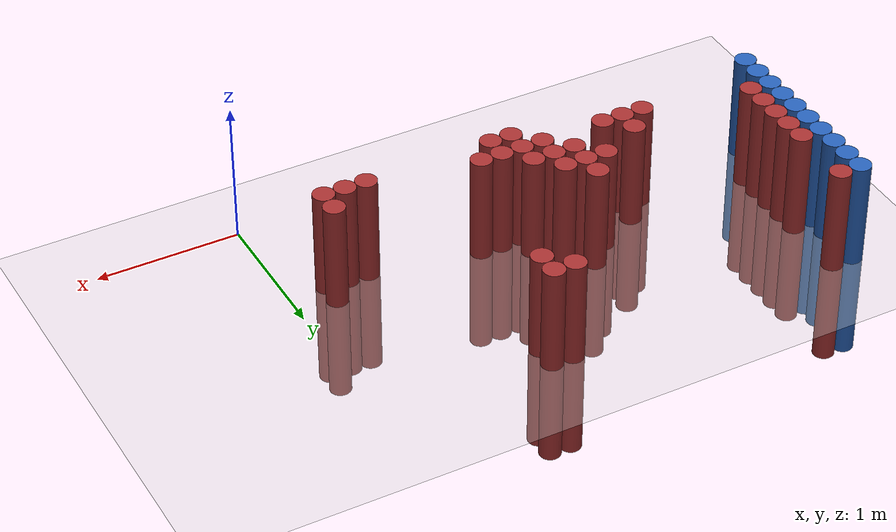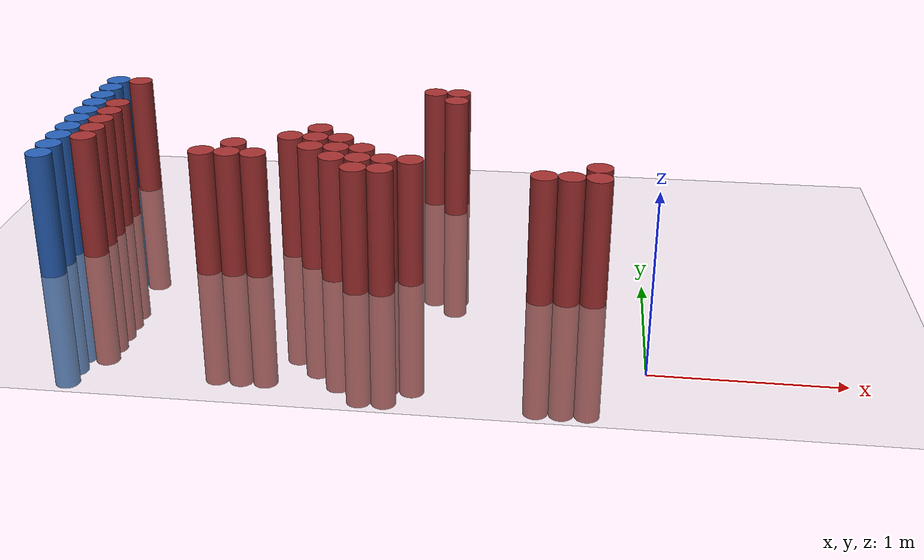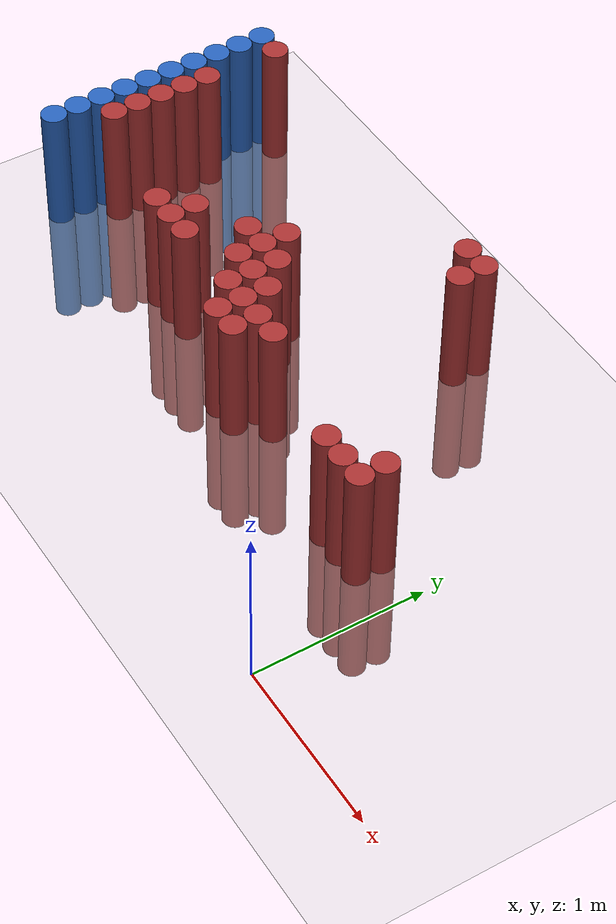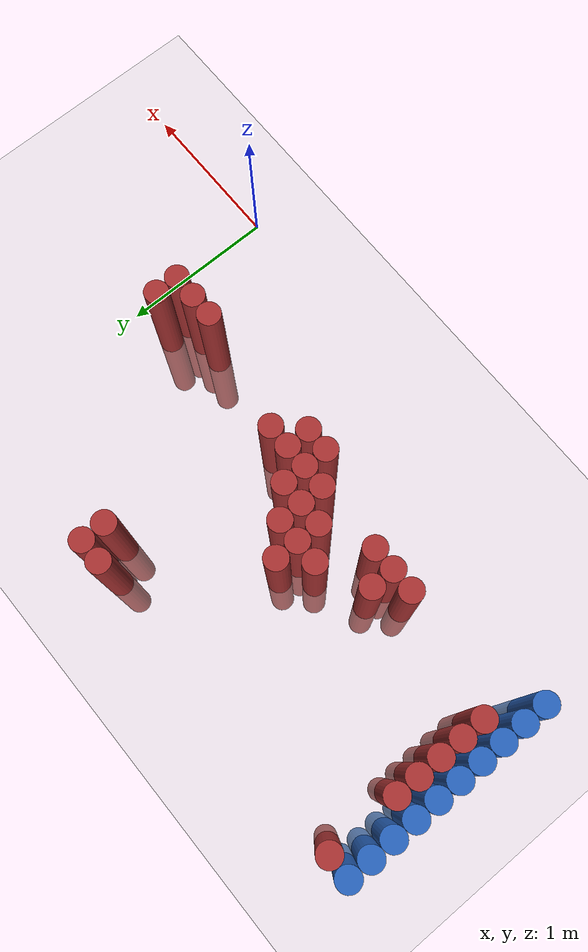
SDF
<sdf version="1.6">
 <world name="default">
  <model name="ground_plane">
   <static>1</static>
   <link name="link">
    <collision name="collision">
     <geometry><plane><normal>0 0 1</normal><size>100 100</size></plane></geometry>
     <surface><friction><ode><mu>100</mu><mu2>50</mu2></ode></friction></surface>
    </collision>
    <visual name="visual">
     <cast_shadows>0</cast_shadows>
     <geometry><plane><normal>0 0 1</normal><size>100 100</size></plane></geometry>
     <material>
      <script><uri>file://media/materials/scripts/gazebo.material</uri><name>Gazebo/Grey</name></script>
     </material>
    </visual>
   </link>
  </model>
  <model name="unit_cylinder_125">
   <static>1</static>
   <pose>-3.425000 0.775000 0.000000 0.000000 0.000000 0.000000</pose>
   <link name="link">
    <inertial>
     <mass>1</mass>
     <inertia><ixx>0.145833</ixx><ixy>0</ixy><ixz>0</ixz><iyy>0.145833</iyy><iyz>0</iyz><izz>0.125</izz></inertia>
    </inertial>
    <collision name="collision">
     <geometry><cylinder><radius>0.075000</radius><length>1.5</length></cylinder></geometry>
    </collision>
    <visual name="visual">
     <geometry><cylinder><radius>0.075000</radius><length>1.5</length></cylinder></geometry>
     <material>
      <ambient>0.152000 0.379000 0.720000 1</ambient>
      <diffuse>0.152000 0.379000 0.720000 1</diffuse>
     </material>
     <material>
      <script><name>Gazebo/Grey</name><uri>file://media/materials/scripts/gazebo.material</uri></script>
     </material>
    </visual>
   </link>
  </model>
  <model name="unit_cylinder_127">
   <static>1</static>
   <pose>-3.425000 0.925000 0.000000 0.000000 0.000000 0.000000</pose>
   <link name="link">
    <inertial>
     <mass>1</mass>
     <inertia><ixx>0.145833</ixx><ixy>0</ixy><ixz>0</ixz><iyy>0.145833</iyy><iyz>0</iyz><izz>0.125</izz></inertia>
    </inertial>
    <collision name="collision">
     <geometry><cylinder><radius>0.075000</radius><length>1.5</length></cylinder></geometry>
    </collision>
    <visual name="visual">
     <geometry><cylinder><radius>0.075000</radius><length>1.5</length></cylinder></geometry>
     <material>
      <ambient>0.152000 0.379000 0.720000 1</ambient>
      <diffuse>0.152000 0.379000 0.720000 1</diffuse>
     </material>
     <material>
      <script><name>Gazebo/Grey</name><uri>file://media/materials/scripts/gazebo.material</uri></script>
     </material>
    </visual>
   </link>
  </model>
  <model name="unit_cylinder_129">
   <static>1</static>
   <pose>-3.425000 1.075000 0.000000 0.000000 0.000000 0.000000</pose>
   <link name="link">
    <inertial>
     <mass>1</mass>
     <inertia><ixx>0.145833</ixx><ixy>0</ixy><ixz>0</ixz><iyy>0.145833</iyy><iyz>0</iyz><izz>0.125</izz></inertia>
    </inertial>
    <collision name="collision">
     <geometry><cylinder><radius>0.075000</radius><length>1.5</length></cylinder></geometry>
    </collision>
    <visual name="visual">
     <geometry><cylinder><radius>0.075000</radius><length>1.5</length></cylinder></geometry>
     <material>
      <ambient>0.152000 0.379000 0.720000 1</ambient>
      <diffuse>0.152000 0.379000 0.720000 1</diffuse>
     </material>
     <material>
      <script><name>Gazebo/Grey</name><uri>file://media/materials/scripts/gazebo.material</uri></script>
     </material>
    </visual>
   </link>
  </model>
  <model name="unit_cylinder_131">
   <static>1</static>
   <pose>-3.425000 1.225000 0.000000 0.000000 0.000000 0.000000</pose>
   <link name="link">
    <inertial>
     <mass>1</mass>
     <inertia><ixx>0.145833</ixx><ixy>0</ixy><ixz>0</ixz><iyy>0.145833</iyy><iyz>0</iyz><izz>0.125</izz></inertia>
    </inertial>
    <collision name="collision">
     <geometry><cylinder><radius>0.075000</radius><length>1.5</length></cylinder></geometry>
    </collision>
    <visual name="visual">
     <geometry><cylinder><radius>0.075000</radius><length>1.5</length></cylinder></geometry>
     <material>
      <ambient>0.152000 0.379000 0.720000 1</ambient>
      <diffuse>0.152000 0.379000 0.720000 1</diffuse>
     </material>
     <material>
      <script><name>Gazebo/Grey</name><uri>file://media/materials/scripts/gazebo.material</uri></script>
     </material>
    </visual>
   </link>
  </model>
  <model name="unit_cylinder_133">
   <static>1</static>
   <pose>-3.425000 1.375000 0.000000 0.000000 0.000000 0.000000</pose>
   <link name="link">
    <inertial>
     <mass>1</mass>
     <inertia><ixx>0.145833</ixx><ixy>0</ixy><ixz>0</ixz><iyy>0.145833</iyy><iyz>0</iyz><izz>0.125</izz></inertia>
    </inertial>
    <collision name="collision">
     <geometry><cylinder><radius>0.075000</radius><length>1.5</length></cylinder></geometry>
    </collision>
    <visual name="visual">
     <geometry><cylinder><radius>0.075000</radius><length>1.5</length></cylinder></geometry>
     <material>
      <ambient>0.152000 0.379000 0.720000 1</ambient>
      <diffuse>0.152000 0.379000 0.720000 1</diffuse>
     </material>
     <material>
      <script><name>Gazebo/Grey</name><uri>file://media/materials/scripts/gazebo.material</uri></script>
     </material>
    </visual>
   </link>
  </model>
  <model name="unit_cylinder_135">
   <static>1</static>
   <pose>-3.425000 1.525000 0.000000 0.000000 0.000000 0.000000</pose>
   <link name="link">
    <inertial>
     <mass>1</mass>
     <inertia><ixx>0.145833</ixx><ixy>0</ixy><ixz>0</ixz><iyy>0.145833</iyy><iyz>0</iyz><izz>0.125</izz></inertia>
    </inertial>
    <collision name="collision">
     <geometry><cylinder><radius>0.075000</radius><length>1.5</length></cylinder></geometry>
    </collision>
    <visual name="visual">
     <geometry><cylinder><radius>0.075000</radius><length>1.5</length></cylinder></geometry>
     <material>
      <ambient>0.152000 0.379000 0.720000 1</ambient>
      <diffuse>0.152000 0.379000 0.720000 1</diffuse>
     </material>
     <material>
      <script><name>Gazebo/Grey</name><uri>file://media/materials/scripts/gazebo.material</uri></script>
     </material>
    </visual>
   </link>
  </model>
  <model name="unit_cylinder_137">
   <static>1</static>
   <pose>-3.425000 1.675000 0.000000 0.000000 0.000000 0.000000</pose>
   <link name="link">
    <inertial>
     <mass>1</mass>
     <inertia><ixx>0.145833</ixx><ixy>0</ixy><ixz>0</ixz><iyy>0.145833</iyy><iyz>0</iyz><izz>0.125</izz></inertia>
    </inertial>
    <collision name="collision">
     <geometry><cylinder><radius>0.075000</radius><length>1.5</length></cylinder></geometry>
    </collision>
    <visual name="visual">
     <geometry><cylinder><radius>0.075000</radius><length>1.5</length></cylinder></geometry>
     <material>
      <ambient>0.152000 0.379000 0.720000 1</ambient>
      <diffuse>0.152000 0.379000 0.720000 1</diffuse>
     </material>
     <material>
      <script><name>Gazebo/Grey</name><uri>file://media/materials/scripts/gazebo.material</uri></script>
     </material>
    </visual>
   </link>
  </model>
  <model name="unit_cylinder_139">
   <static>1</static>
   <pose>-3.425000 1.825000 0.000000 0.000000 0.000000 0.000000</pose>
   <link name="link">
    <inertial>
     <mass>1</mass>
     <inertia><ixx>0.145833</ixx><ixy>0</ixy><ixz>0</ixz><iyy>0.145833</iyy><iyz>0</iyz><izz>0.125</izz></inertia>
    </inertial>
    <collision name="collision">
     <geometry><cylinder><radius>0.075000</radius><length>1.5</length></cylinder></geometry>
    </collision>
    <visual name="visual">
     <geometry><cylinder><radius>0.075000</radius><length>1.5</length></cylinder></geometry>
     <material>
      <ambient>0.152000 0.379000 0.720000 1</ambient>
      <diffuse>0.152000 0.379000 0.720000 1</diffuse>
     </material>
     <material>
      <script><name>Gazebo/Grey</name><uri>file://media/materials/scripts/gazebo.material</uri></script>
     </material>
    </visual>
   </link>
  </model>
  <model name="unit_cylinder_141">
   <static>1</static>
   <pose>-3.425000 1.975000 0.000000 0.000000 0.000000 0.000000</pose>
   <link name="link">
    <inertial>
     <mass>1</mass>
     <inertia><ixx>0.145833</ixx><ixy>0</ixy><ixz>0</ixz><iyy>0.145833</iyy><iyz>0</iyz><izz>0.125</izz></inertia>
    </inertial>
    <collision name="collision">
     <geometry><cylinder><radius>0.075000</radius><length>1.5</length></cylinder></geometry>
    </collision>
    <visual name="visual">
     <geometry><cylinder><radius>0.075000</radius><length>1.5</length></cylinder></geometry>
     <material>
      <ambient>0.152000 0.379000 0.720000 1</ambient>
      <diffuse>0.152000 0.379000 0.720000 1</diffuse>
     </material>
     <material>
      <script><name>Gazebo/Grey</name><uri>file://media/materials/scripts/gazebo.material</uri></script>
     </material>
    </visual>
   </link>
  </model>
  <model name="unit_cylinder_143">
   <static>1</static>
   <pose>-3.425000 2.125000 0.000000 0.000000 0.000000 0.000000</pose>
   <link name="link">
    <inertial>
     <mass>1</mass>
     <inertia><ixx>0.145833</ixx><ixy>0</ixy><ixz>0</ixz><iyy>0.145833</iyy><iyz>0</iyz><izz>0.125</izz></inertia>
    </inertial>
    <collision name="collision">
     <geometry><cylinder><radius>0.075000</radius><length>1.5</length></cylinder></geometry>
    </collision>
    <visual name="visual">
     <geometry><cylinder><radius>0.075000</radius><length>1.5</length></cylinder></geometry>
     <material>
      <ambient>0.152000 0.379000 0.720000 1</ambient>
      <diffuse>0.152000 0.379000 0.720000 1</diffuse>
     </material>
     <material>
      <script><name>Gazebo/Grey</name><uri>file://media/materials/scripts/gazebo.material</uri></script>
     </material>
    </visual>
   </link>
  </model>
  <model name="unit_cylinder_226">
   <static>1</static>
   <pose>-3.425000 0.775000 0.000000 0.000000 0.000000 0.000000</pose>
   <link name="link">
    <inertial>
     <mass>1</mass>
     <inertia><ixx>0.145833</ixx><ixy>0</ixy><ixz>0</ixz><iyy>0.145833</iyy><iyz>0</iyz><izz>0.125</izz></inertia>
    </inertial>
    <collision name="collision">
     <geometry><cylinder><radius>0.075000</radius><length>1.5</length></cylinder></geometry>
    </collision>
    <visual name="visual">
     <geometry><cylinder><radius>0.075000</radius><length>1.5</length></cylinder></geometry>
     <material>
      <ambient>0.152000 0.379000 0.720000 1</ambient>
      <diffuse>0.152000 0.379000 0.720000 1</diffuse>
     </material>
     <material>
      <script><name>Gazebo/Grey</name><uri>file://media/materials/scripts/gazebo.material</uri></script>
     </material>
    </visual>
   </link>
  </model>
  <model name="unit_cylinder_227">
   <static>1</static>
   <pose>-3.425000 0.925000 0.000000 0.000000 0.000000 0.000000</pose>
   <link name="link">
    <inertial>
     <mass>1</mass>
     <inertia><ixx>0.145833</ixx><ixy>0</ixy><ixz>0</ixz><iyy>0.145833</iyy><iyz>0</iyz><izz>0.125</izz></inertia>
    </inertial>
    <collision name="collision">
     <geometry><cylinder><radius>0.075000</radius><length>1.5</length></cylinder></geometry>
    </collision>
    <visual name="visual">
     <geometry><cylinder><radius>0.075000</radius><length>1.5</length></cylinder></geometry>
     <material>
      <ambient>0.152000 0.379000 0.720000 1</ambient>
      <diffuse>0.152000 0.379000 0.720000 1</diffuse>
     </material>
     <material>
      <script><name>Gazebo/Grey</name><uri>file://media/materials/scripts/gazebo.material</uri></script>
     </material>
    </visual>
   </link>
  </model>
  <model name="unit_cylinder_228">
   <static>1</static>
   <pose>-3.425000 1.075000 0.000000 0.000000 0.000000 0.000000</pose>
   <link name="link">
    <inertial>
     <mass>1</mass>
     <inertia><ixx>0.145833</ixx><ixy>0</ixy><ixz>0</ixz><iyy>0.145833</iyy><iyz>0</iyz><izz>0.125</izz></inertia>
    </inertial>
    <collision name="collision">
     <geometry><cylinder><radius>0.075000</radius><length>1.5</length></cylinder></geometry>
    </collision>
    <visual name="visual">
     <geometry><cylinder><radius>0.075000</radius><length>1.5</length></cylinder></geometry>
     <material>
      <ambient>0.152000 0.379000 0.720000 1</ambient>
      <diffuse>0.152000 0.379000 0.720000 1</diffuse>
     </material>
     <material>
      <script><name>Gazebo/Grey</name><uri>file://media/materials/scripts/gazebo.material</uri></script>
     </material>
    </visual>
   </link>
  </model>
  <model name="unit_cylinder_229">
   <static>1</static>
   <pose>-3.425000 1.225000 0.000000 0.000000 0.000000 0.000000</pose>
   <link name="link">
    <inertial>
     <mass>1</mass>
     <inertia><ixx>0.145833</ixx><ixy>0</ixy><ixz>0</ixz><iyy>0.145833</iyy><iyz>0</iyz><izz>0.125</izz></inertia>
    </inertial>
    <collision name="collision">
     <geometry><cylinder><radius>0.075000</radius><length>1.5</length></cylinder></geometry>
    </collision>
    <visual name="visual">
     <geometry><cylinder><radius>0.075000</radius><length>1.5</length></cylinder></geometry>
     <material>
      <ambient>0.152000 0.379000 0.720000 1</ambient>
      <diffuse>0.152000 0.379000 0.720000 1</diffuse>
     </material>
     <material>
      <script><name>Gazebo/Grey</name><uri>file://media/materials/scripts/gazebo.material</uri></script>
     </material>
    </visual>
   </link>
  </model>
  <model name="unit_cylinder_230">
   <static>1</static>
   <pose>-3.425000 1.375000 0.000000 0.000000 0.000000 0.000000</pose>
   <link name="link">
    <inertial>
     <mass>1</mass>
     <inertia><ixx>0.145833</ixx><ixy>0</ixy><ixz>0</ixz><iyy>0.145833</iyy><iyz>0</iyz><izz>0.125</izz></inertia>
    </inertial>
    <collision name="collision">
     <geometry><cylinder><radius>0.075000</radius><length>1.5</length></cylinder></geometry>
    </collision>
    <visual name="visual">
     <geometry><cylinder><radius>0.075000</radius><length>1.5</length></cylinder></geometry>
     <material>
      <ambient>0.152000 0.379000 0.720000 1</ambient>
      <diffuse>0.152000 0.379000 0.720000 1</diffuse>
     </material>
     <material>
      <script><name>Gazebo/Grey</name><uri>file://media/materials/scripts/gazebo.material</uri></script>
     </material>
    </visual>
   </link>
  </model>
  <model name="unit_cylinder_231">
   <static>1</static>
   <pose>-3.425000 1.525000 0.000000 0.000000 0.000000 0.000000</pose>
   <link name="link">
    <inertial>
     <mass>1</mass>
     <inertia><ixx>0.145833</ixx><ixy>0</ixy><ixz>0</ixz><iyy>0.145833</iyy><iyz>0</iyz><izz>0.125</izz></inertia>
    </inertial>
    <collision name="collision">
     <geometry><cylinder><radius>0.075000</radius><length>1.5</length></cylinder></geometry>
    </collision>
    <visual name="visual">
     <geometry><cylinder><radius>0.075000</radius><length>1.5</length></cylinder></geometry>
     <material>
      <ambient>0.152000 0.379000 0.720000 1</ambient>
      <diffuse>0.152000 0.379000 0.720000 1</diffuse>
     </material>
     <material>
      <script><name>Gazebo/Grey</name><uri>file://media/materials/scripts/gazebo.material</uri></script>
     </material>
    </visual>
   </link>
  </model>
  <model name="unit_cylinder_232">
   <static>1</static>
   <pose>-3.425000 1.675000 0.000000 0.000000 0.000000 0.000000</pose>
   <link name="link">
    <inertial>
     <mass>1</mass>
     <inertia><ixx>0.145833</ixx><ixy>0</ixy><ixz>0</ixz><iyy>0.145833</iyy><iyz>0</iyz><izz>0.125</izz></inertia>
    </inertial>
    <collision name="collision">
     <geometry><cylinder><radius>0.075000</radius><length>1.5</length></cylinder></geometry>
    </collision>
    <visual name="visual">
     <geometry><cylinder><radius>0.075000</radius><length>1.5</length></cylinder></geometry>
     <material>
      <ambient>0.152000 0.379000 0.720000 1</ambient>
      <diffuse>0.152000 0.379000 0.720000 1</diffuse>
     </material>
     <material>
      <script><name>Gazebo/Grey</name><uri>file://media/materials/scripts/gazebo.material</uri></script>
     </material>
    </visual>
   </link>
  </model>
  <model name="unit_cylinder_233">
   <static>1</static>
   <pose>-3.425000 1.825000 0.000000 0.000000 0.000000 0.000000</pose>
   <link name="link">
    <inertial>
     <mass>1</mass>
     <inertia><ixx>0.145833</ixx><ixy>0</ixy><ixz>0</ixz><iyy>0.145833</iyy><iyz>0</iyz><izz>0.125</izz></inertia>
    </inertial>
    <collision name="collision">
     <geometry><cylinder><radius>0.075000</radius><length>1.5</length></cylinder></geometry>
    </collision>
    <visual name="visual">
     <geometry><cylinder><radius>0.075000</radius><length>1.5</length></cylinder></geometry>
     <material>
      <ambient>0.152000 0.379000 0.720000 1</ambient>
      <diffuse>0.152000 0.379000 0.720000 1</diffuse>
     </material>
     <material>
      <script><name>Gazebo/Grey</name><uri>file://media/materials/scripts/gazebo.material</uri></script>
     </material>
    </visual>
   </link>
  </model>
  <model name="unit_cylinder_234">
   <static>1</static>
   <pose>-3.425000 1.975000 0.000000 0.000000 0.000000 0.000000</pose>
   <link name="link">
    <inertial>
     <mass>1</mass>
     <inertia><ixx>0.145833</ixx><ixy>0</ixy><ixz>0</ixz><iyy>0.145833</iyy><iyz>0</iyz><izz>0.125</izz></inertia>
    </inertial>
    <collision name="collision">
     <geometry><cylinder><radius>0.075000</radius><length>1.5</length></cylinder></geometry>
    </collision>
    <visual name="visual">
     <geometry><cylinder><radius>0.075000</radius><length>1.5</length></cylinder></geometry>
     <material>
      <ambient>0.152000 0.379000 0.720000 1</ambient>
      <diffuse>0.152000 0.379000 0.720000 1</diffuse>
     </material>
     <material>
      <script><name>Gazebo/Grey</name><uri>file://media/materials/scripts/gazebo.material</uri></script>
     </material>
    </visual>
   </link>
  </model>
  <model name="unit_cylinder_235">
   <static>1</static>
   <pose>-3.425000 2.125000 0.000000 0.000000 0.000000 0.000000</pose>
   <link name="link">
    <inertial>
     <mass>1</mass>
     <inertia><ixx>0.145833</ixx><ixy>0</ixy><ixz>0</ixz><iyy>0.145833</iyy><iyz>0</iyz><izz>0.125</izz></inertia>
    </inertial>
    <collision name="collision">
     <geometry><cylinder><radius>0.075000</radius><length>1.5</length></cylinder></geometry>
    </collision>
    <visual name="visual">
     <geometry><cylinder><radius>0.075000</radius><length>1.5</length></cylinder></geometry>
     <material>
      <ambient>0.152000 0.379000 0.720000 1</ambient>
      <diffuse>0.152000 0.379000 0.720000 1</diffuse>
     </material>
     <material>
      <script><name>Gazebo/Grey</name><uri>file://media/materials/scripts/gazebo.material</uri></script>
     </material>
    </visual>
   </link>
  </model>
  <model name="unit_cylinder_265">
   <static>1</static>
   <pose>-3.275000 1.075000 0.000000 0.000000 0.000000 0.000000</pose>
   <link name="link">
    <inertial>
     <mass>1</mass>
     <inertia><ixx>0.145833</ixx><ixy>0</ixy><ixz>0</ixz><iyy>0.145833</iyy><iyz>0</iyz><izz>0.125</izz></inertia>
    </inertial>
    <collision name="collision">
     <geometry><cylinder><radius>0.075000</radius><length>1.5</length></cylinder></geometry>
    </collision>
    <visual name="visual">
     <geometry><cylinder><radius>0.075000</radius><length>1.5</length></cylinder></geometry>
     <material>
      <ambient>0.648000 0.192000 0.192000 1</ambient>
      <diffuse>0.648000 0.192000 0.192000 1</diffuse>
     </material>
     <material>
      <script><name>Gazebo/Grey</name><uri>file://media/materials/scripts/gazebo.material</uri></script>
     </material>
    </visual>
   </link>
  </model>
  <model name="unit_cylinder_266">
   <static>1</static>
   <pose>-3.275000 1.225000 0.000000 0.000000 0.000000 0.000000</pose>
   <link name="link">
    <inertial>
     <mass>1</mass>
     <inertia><ixx>0.145833</ixx><ixy>0</ixy><ixz>0</ixz><iyy>0.145833</iyy><iyz>0</iyz><izz>0.125</izz></inertia>
    </inertial>
    <collision name="collision">
     <geometry><cylinder><radius>0.075000</radius><length>1.5</length></cylinder></geometry>
    </collision>
    <visual name="visual">
     <geometry><cylinder><radius>0.075000</radius><length>1.5</length></cylinder></geometry>
     <material>
      <ambient>0.648000 0.192000 0.192000 1</ambient>
      <diffuse>0.648000 0.192000 0.192000 1</diffuse>
     </material>
     <material>
      <script><name>Gazebo/Grey</name><uri>file://media/materials/scripts/gazebo.material</uri></script>
     </material>
    </visual>
   </link>
  </model>
  <model name="unit_cylinder_267">
   <static>1</static>
   <pose>-3.275000 1.375000 0.000000 0.000000 0.000000 0.000000</pose>
   <link name="link">
    <inertial>
     <mass>1</mass>
     <inertia><ixx>0.145833</ixx><ixy>0</ixy><ixz>0</ixz><iyy>0.145833</iyy><iyz>0</iyz><izz>0.125</izz></inertia>
    </inertial>
    <collision name="collision">
     <geometry><cylinder><radius>0.075000</radius><length>1.5</length></cylinder></geometry>
    </collision>
    <visual name="visual">
     <geometry><cylinder><radius>0.075000</radius><length>1.5</length></cylinder></geometry>
     <material>
      <ambient>0.648000 0.192000 0.192000 1</ambient>
      <diffuse>0.648000 0.192000 0.192000 1</diffuse>
     </material>
     <material>
      <script><name>Gazebo/Grey</name><uri>file://media/materials/scripts/gazebo.material</uri></script>
     </material>
    </visual>
   </link>
  </model>
  <model name="unit_cylinder_268">
   <static>1</static>
   <pose>-3.275000 1.525000 0.000000 0.000000 0.000000 0.000000</pose>
   <link name="link">
    <inertial>
     <mass>1</mass>
     <inertia><ixx>0.145833</ixx><ixy>0</ixy><ixz>0</ixz><iyy>0.145833</iyy><iyz>0</iyz><izz>0.125</izz></inertia>
    </inertial>
    <collision name="collision">
     <geometry><cylinder><radius>0.075000</radius><length>1.5</length></cylinder></geometry>
    </collision>
    <visual name="visual">
     <geometry><cylinder><radius>0.075000</radius><length>1.5</length></cylinder></geometry>
     <material>
      <ambient>0.648000 0.192000 0.192000 1</ambient>
      <diffuse>0.648000 0.192000 0.192000 1</diffuse>
     </material>
     <material>
      <script><name>Gazebo/Grey</name><uri>file://media/materials/scripts/gazebo.material</uri></script>
     </material>
    </visual>
   </link>
  </model>
  <model name="unit_cylinder_269">
   <static>1</static>
   <pose>-3.275000 1.675000 0.000000 0.000000 0.000000 0.000000</pose>
   <link name="link">
    <inertial>
     <mass>1</mass>
     <inertia><ixx>0.145833</ixx><ixy>0</ixy><ixz>0</ixz><iyy>0.145833</iyy><iyz>0</iyz><izz>0.125</izz></inertia>
    </inertial>
    <collision name="collision">
     <geometry><cylinder><radius>0.075000</radius><length>1.5</length></cylinder></geometry>
    </collision>
    <visual name="visual">
     <geometry><cylinder><radius>0.075000</radius><length>1.5</length></cylinder></geometry>
     <material>
      <ambient>0.648000 0.192000 0.192000 1</ambient>
      <diffuse>0.648000 0.192000 0.192000 1</diffuse>
     </material>
     <material>
      <script><name>Gazebo/Grey</name><uri>file://media/materials/scripts/gazebo.material</uri></script>
     </material>
    </visual>
   </link>
  </model>
  <model name="unit_cylinder_270">
   <static>1</static>
   <pose>-3.275000 2.125000 0.000000 0.000000 0.000000 0.000000</pose>
   <link name="link">
    <inertial>
     <mass>1</mass>
     <inertia><ixx>0.145833</ixx><ixy>0</ixy><ixz>0</ixz><iyy>0.145833</iyy><iyz>0</iyz><izz>0.125</izz></inertia>
    </inertial>
    <collision name="collision">
     <geometry><cylinder><radius>0.075000</radius><length>1.5</length></cylinder></geometry>
    </collision>
    <visual name="visual">
     <geometry><cylinder><radius>0.075000</radius><length>1.5</length></cylinder></geometry>
     <material>
      <ambient>0.648000 0.192000 0.192000 1</ambient>
      <diffuse>0.648000 0.192000 0.192000 1</diffuse>
     </material>
     <material>
      <script><name>Gazebo/Grey</name><uri>file://media/materials/scripts/gazebo.material</uri></script>
     </material>
    </visual>
   </link>
  </model>
  <model name="unit_cylinder_302">
   <static>1</static>
   <pose>-2.525000 0.925000 0.000000 0.000000 0.000000 0.000000</pose>
   <link name="link">
    <inertial>
     <mass>1</mass>
     <inertia><ixx>0.145833</ixx><ixy>0</ixy><ixz>0</ixz><iyy>0.145833</iyy><iyz>0</iyz><izz>0.125</izz></inertia>
    </inertial>
    <collision name="collision">
     <geometry><cylinder><radius>0.075000</radius><length>1.5</length></cylinder></geometry>
    </collision>
    <visual name="visual">
     <geometry><cylinder><radius>0.075000</radius><length>1.5</length></cylinder></geometry>
     <material>
      <ambient>0.648000 0.192000 0.192000 1</ambient>
      <diffuse>0.648000 0.192000 0.192000 1</diffuse>
     </material>
     <material>
      <script><name>Gazebo/Grey</name><uri>file://media/materials/scripts/gazebo.material</uri></script>
     </material>
    </visual>
   </link>
  </model>
  <model name="unit_cylinder_306">
   <static>1</static>
   <pose>-2.375000 0.925000 0.000000 0.000000 0.000000 0.000000</pose>
   <link name="link">
    <inertial>
     <mass>1</mass>
     <inertia><ixx>0.145833</ixx><ixy>0</ixy><ixz>0</ixz><iyy>0.145833</iyy><iyz>0</iyz><izz>0.125</izz></inertia>
    </inertial>
    <collision name="collision">
     <geometry><cylinder><radius>0.075000</radius><length>1.5</length></cylinder></geometry>
    </collision>
    <visual name="visual">
     <geometry><cylinder><radius>0.075000</radius><length>1.5</length></cylinder></geometry>
     <material>
      <ambient>0.648000 0.192000 0.192000 1</ambient>
      <diffuse>0.648000 0.192000 0.192000 1</diffuse>
     </material>
     <material>
      <script><name>Gazebo/Grey</name><uri>file://media/materials/scripts/gazebo.material</uri></script>
     </material>
    </visual>
   </link>
  </model>
  <model name="unit_cylinder_307">
   <static>1</static>
   <pose>-2.375000 1.075000 0.000000 0.000000 0.000000 0.000000</pose>
   <link name="link">
    <inertial>
     <mass>1</mass>
     <inertia><ixx>0.145833</ixx><ixy>0</ixy><ixz>0</ixz><iyy>0.145833</iyy><iyz>0</iyz><izz>0.125</izz></inertia>
    </inertial>
    <collision name="collision">
     <geometry><cylinder><radius>0.075000</radius><length>1.5</length></cylinder></geometry>
    </collision>
    <visual name="visual">
     <geometry><cylinder><radius>0.075000</radius><length>1.5</length></cylinder></geometry>
     <material>
      <ambient>0.648000 0.192000 0.192000 1</ambient>
      <diffuse>0.648000 0.192000 0.192000 1</diffuse>
     </material>
     <material>
      <script><name>Gazebo/Grey</name><uri>file://media/materials/scripts/gazebo.material</uri></script>
     </material>
    </visual>
   </link>
  </model>
  <model name="unit_cylinder_313">
   <static>1</static>
   <pose>-2.225000 0.925000 0.000000 0.000000 0.000000 0.000000</pose>
   <link name="link">
    <inertial>
     <mass>1</mass>
     <inertia><ixx>0.145833</ixx><ixy>0</ixy><ixz>0</ixz><iyy>0.145833</iyy><iyz>0</iyz><izz>0.125</izz></inertia>
    </inertial>
    <collision name="collision">
     <geometry><cylinder><radius>0.075000</radius><length>1.5</length></cylinder></geometry>
    </collision>
    <visual name="visual">
     <geometry><cylinder><radius>0.075000</radius><length>1.5</length></cylinder></geometry>
     <material>
      <ambient>0.648000 0.192000 0.192000 1</ambient>
      <diffuse>0.648000 0.192000 0.192000 1</diffuse>
     </material>
     <material>
      <script><name>Gazebo/Grey</name><uri>file://media/materials/scripts/gazebo.material</uri></script>
     </material>
    </visual>
   </link>
  </model>
  <model name="unit_cylinder_321">
   <static>1</static>
   <pose>-2.075000 1.225000 0.000000 0.000000 0.000000 0.000000</pose>
   <link name="link">
    <inertial>
     <mass>1</mass>
     <inertia><ixx>0.145833</ixx><ixy>0</ixy><ixz>0</ixz><iyy>0.145833</iyy><iyz>0</iyz><izz>0.125</izz></inertia>
    </inertial>
    <collision name="collision">
     <geometry><cylinder><radius>0.075000</radius><length>1.5</length></cylinder></geometry>
    </collision>
    <visual name="visual">
     <geometry><cylinder><radius>0.075000</radius><length>1.5</length></cylinder></geometry>
     <material>
      <ambient>0.648000 0.192000 0.192000 1</ambient>
      <diffuse>0.648000 0.192000 0.192000 1</diffuse>
     </material>
     <material>
      <script><name>Gazebo/Grey</name><uri>file://media/materials/scripts/gazebo.material</uri></script>
     </material>
    </visual>
   </link>
  </model>
  <model name="unit_cylinder_326">
   <static>1</static>
   <pose>-1.925000 1.075000 0.000000 0.000000 0.000000 0.000000</pose>
   <link name="link">
    <inertial>
     <mass>1</mass>
     <inertia><ixx>0.145833</ixx><ixy>0</ixy><ixz>0</ixz><iyy>0.145833</iyy><iyz>0</iyz><izz>0.125</izz></inertia>
    </inertial>
    <collision name="collision">
     <geometry><cylinder><radius>0.075000</radius><length>1.5</length></cylinder></geometry>
    </collision>
    <visual name="visual">
     <geometry><cylinder><radius>0.075000</radius><length>1.5</length></cylinder></geometry>
     <material>
      <ambient>0.648000 0.192000 0.192000 1</ambient>
      <diffuse>0.648000 0.192000 0.192000 1</diffuse>
     </material>
     <material>
      <script><name>Gazebo/Grey</name><uri>file://media/materials/scripts/gazebo.material</uri></script>
     </material>
    </visual>
   </link>
  </model>
  <model name="unit_cylinder_327">
   <static>1</static>
   <pose>-1.925000 1.225000 0.000000 0.000000 0.000000 0.000000</pose>
   <link name="link">
    <inertial>
     <mass>1</mass>
     <inertia><ixx>0.145833</ixx><ixy>0</ixy><ixz>0</ixz><iyy>0.145833</iyy><iyz>0</iyz><izz>0.125</izz></inertia>
    </inertial>
    <collision name="collision">
     <geometry><cylinder><radius>0.075000</radius><length>1.5</length></cylinder></geometry>
    </collision>
    <visual name="visual">
     <geometry><cylinder><radius>0.075000</radius><length>1.5</length></cylinder></geometry>
     <material>
      <ambient>0.648000 0.192000 0.192000 1</ambient>
      <diffuse>0.648000 0.192000 0.192000 1</diffuse>
     </material>
     <material>
      <script><name>Gazebo/Grey</name><uri>file://media/materials/scripts/gazebo.material</uri></script>
     </material>
    </visual>
   </link>
  </model>
  <model name="unit_cylinder_328">
   <static>1</static>
   <pose>-1.925000 1.375000 0.000000 0.000000 0.000000 0.000000</pose>
   <link name="link">
    <inertial>
     <mass>1</mass>
     <inertia><ixx>0.145833</ixx><ixy>0</ixy><ixz>0</ixz><iyy>0.145833</iyy><iyz>0</iyz><izz>0.125</izz></inertia>
    </inertial>
    <collision name="collision">
     <geometry><cylinder><radius>0.075000</radius><length>1.5</length></cylinder></geometry>
    </collision>
    <visual name="visual">
     <geometry><cylinder><radius>0.075000</radius><length>1.5</length></cylinder></geometry>
     <material>
      <ambient>0.648000 0.192000 0.192000 1</ambient>
      <diffuse>0.648000 0.192000 0.192000 1</diffuse>
     </material>
     <material>
      <script><name>Gazebo/Grey</name><uri>file://media/materials/scripts/gazebo.material</uri></script>
     </material>
    </visual>
   </link>
  </model>
  <model name="unit_cylinder_330">
   <static>1</static>
   <pose>-1.775000 0.925000 0.000000 0.000000 0.000000 0.000000</pose>
   <link name="link">
    <inertial>
     <mass>1</mass>
     <inertia><ixx>0.145833</ixx><ixy>0</ixy><ixz>0</ixz><iyy>0.145833</iyy><iyz>0</iyz><izz>0.125</izz></inertia>
    </inertial>
    <collision name="collision">
     <geometry><cylinder><radius>0.075000</radius><length>1.5</length></cylinder></geometry>
    </collision>
    <visual name="visual">
     <geometry><cylinder><radius>0.075000</radius><length>1.5</length></cylinder></geometry>
     <material>
      <ambient>0.648000 0.192000 0.192000 1</ambient>
      <diffuse>0.648000 0.192000 0.192000 1</diffuse>
     </material>
     <material>
      <script><name>Gazebo/Grey</name><uri>file://media/materials/scripts/gazebo.material</uri></script>
     </material>
    </visual>
   </link>
  </model>
  <model name="unit_cylinder_331">
   <static>1</static>
   <pose>-1.775000 1.075000 0.000000 0.000000 0.000000 0.000000</pose>
   <link name="link">
    <inertial>
     <mass>1</mass>
     <inertia><ixx>0.145833</ixx><ixy>0</ixy><ixz>0</ixz><iyy>0.145833</iyy><iyz>0</iyz><izz>0.125</izz></inertia>
    </inertial>
    <collision name="collision">
     <geometry><cylinder><radius>0.075000</radius><length>1.5</length></cylinder></geometry>
    </collision>
    <visual name="visual">
     <geometry><cylinder><radius>0.075000</radius><length>1.5</length></cylinder></geometry>
     <material>
      <ambient>0.648000 0.192000 0.192000 1</ambient>
      <diffuse>0.648000 0.192000 0.192000 1</diffuse>
     </material>
     <material>
      <script><name>Gazebo/Grey</name><uri>file://media/materials/scripts/gazebo.material</uri></script>
     </material>
    </visual>
   </link>
  </model>
  <model name="unit_cylinder_332">
   <static>1</static>
   <pose>-1.775000 1.225000 0.000000 0.000000 0.000000 0.000000</pose>
   <link name="link">
    <inertial>
     <mass>1</mass>
     <inertia><ixx>0.145833</ixx><ixy>0</ixy><ixz>0</ixz><iyy>0.145833</iyy><iyz>0</iyz><izz>0.125</izz></inertia>
    </inertial>
    <collision name="collision">
     <geometry><cylinder><radius>0.075000</radius><length>1.5</length></cylinder></geometry>
    </collision>
    <visual name="visual">
     <geometry><cylinder><radius>0.075000</radius><length>1.5</length></cylinder></geometry>
     <material>
      <ambient>0.648000 0.192000 0.192000 1</ambient>
      <diffuse>0.648000 0.192000 0.192000 1</diffuse>
     </material>
     <material>
      <script><name>Gazebo/Grey</name><uri>file://media/materials/scripts/gazebo.material</uri></script>
     </material>
    </visual>
   </link>
  </model>
  <model name="unit_cylinder_335">
   <static>1</static>
   <pose>-1.625000 0.775000 0.000000 0.000000 0.000000 0.000000</pose>
   <link name="link">
    <inertial>
     <mass>1</mass>
     <inertia><ixx>0.145833</ixx><ixy>0</ixy><ixz>0</ixz><iyy>0.145833</iyy><iyz>0</iyz><izz>0.125</izz></inertia>
    </inertial>
    <collision name="collision">
     <geometry><cylinder><radius>0.075000</radius><length>1.5</length></cylinder></geometry>
    </collision>
    <visual name="visual">
     <geometry><cylinder><radius>0.075000</radius><length>1.5</length></cylinder></geometry>
     <material>
      <ambient>0.648000 0.192000 0.192000 1</ambient>
      <diffuse>0.648000 0.192000 0.192000 1</diffuse>
     </material>
     <material>
      <script><name>Gazebo/Grey</name><uri>file://media/materials/scripts/gazebo.material</uri></script>
     </material>
    </visual>
   </link>
  </model>
  <model name="unit_cylinder_336">
   <static>1</static>
   <pose>-1.625000 0.925000 0.000000 0.000000 0.000000 0.000000</pose>
   <link name="link">
    <inertial>
     <mass>1</mass>
     <inertia><ixx>0.145833</ixx><ixy>0</ixy><ixz>0</ixz><iyy>0.145833</iyy><iyz>0</iyz><izz>0.125</izz></inertia>
    </inertial>
    <collision name="collision">
     <geometry><cylinder><radius>0.075000</radius><length>1.5</length></cylinder></geometry>
    </collision>
    <visual name="visual">
     <geometry><cylinder><radius>0.075000</radius><length>1.5</length></cylinder></geometry>
     <material>
      <ambient>0.648000 0.192000 0.192000 1</ambient>
      <diffuse>0.648000 0.192000 0.192000 1</diffuse>
     </material>
     <material>
      <script><name>Gazebo/Grey</name><uri>file://media/materials/scripts/gazebo.material</uri></script>
     </material>
    </visual>
   </link>
  </model>
  <model name="unit_cylinder_337">
   <static>1</static>
   <pose>-1.625000 1.075000 0.000000 0.000000 0.000000 0.000000</pose>
   <link name="link">
    <inertial>
     <mass>1</mass>
     <inertia><ixx>0.145833</ixx><ixy>0</ixy><ixz>0</ixz><iyy>0.145833</iyy><iyz>0</iyz><izz>0.125</izz></inertia>
    </inertial>
    <collision name="collision">
     <geometry><cylinder><radius>0.075000</radius><length>1.5</length></cylinder></geometry>
    </collision>
    <visual name="visual">
     <geometry><cylinder><radius>0.075000</radius><length>1.5</length></cylinder></geometry>
     <material>
      <ambient>0.648000 0.192000 0.192000 1</ambient>
      <diffuse>0.648000 0.192000 0.192000 1</diffuse>
     </material>
     <material>
      <script><name>Gazebo/Grey</name><uri>file://media/materials/scripts/gazebo.material</uri></script>
     </material>
    </visual>
   </link>
  </model>
  <model name="unit_cylinder_339">
   <static>1</static>
   <pose>-1.475000 0.775000 0.000000 0.000000 0.000000 0.000000</pose>
   <link name="link">
    <inertial>
     <mass>1</mass>
     <inertia><ixx>0.145833</ixx><ixy>0</ixy><ixz>0</ixz><iyy>0.145833</iyy><iyz>0</iyz><izz>0.125</izz></inertia>
    </inertial>
    <collision name="collision">
     <geometry><cylinder><radius>0.075000</radius><length>1.5</length></cylinder></geometry>
    </collision>
    <visual name="visual">
     <geometry><cylinder><radius>0.075000</radius><length>1.5</length></cylinder></geometry>
     <material>
      <ambient>0.648000 0.192000 0.192000 1</ambient>
      <diffuse>0.648000 0.192000 0.192000 1</diffuse>
     </material>
     <material>
      <script><name>Gazebo/Grey</name><uri>file://media/materials/scripts/gazebo.material</uri></script>
     </material>
    </visual>
   </link>
  </model>
  <model name="unit_cylinder_340">
   <static>1</static>
   <pose>-1.475000 0.925000 0.000000 0.000000 0.000000 0.000000</pose>
   <link name="link">
    <inertial>
     <mass>1</mass>
     <inertia><ixx>0.145833</ixx><ixy>0</ixy><ixz>0</ixz><iyy>0.145833</iyy><iyz>0</iyz><izz>0.125</izz></inertia>
    </inertial>
    <collision name="collision">
     <geometry><cylinder><radius>0.075000</radius><length>1.5</length></cylinder></geometry>
    </collision>
    <visual name="visual">
     <geometry><cylinder><radius>0.075000</radius><length>1.5</length></cylinder></geometry>
     <material>
      <ambient>0.648000 0.192000 0.192000 1</ambient>
      <diffuse>0.648000 0.192000 0.192000 1</diffuse>
     </material>
     <material>
      <script><name>Gazebo/Grey</name><uri>file://media/materials/scripts/gazebo.material</uri></script>
     </material>
    </visual>
   </link>
  </model>
  <model name="unit_cylinder_344">
   <static>1</static>
   <pose>-1.325000 0.925000 0.000000 0.000000 0.000000 0.000000</pose>
   <link name="link">
    <inertial>
     <mass>1</mass>
     <inertia><ixx>0.145833</ixx><ixy>0</ixy><ixz>0</ixz><iyy>0.145833</iyy><iyz>0</iyz><izz>0.125</izz></inertia>
    </inertial>
    <collision name="collision">
     <geometry><cylinder><radius>0.075000</radius><length>1.5</length></cylinder></geometry>
    </collision>
    <visual name="visual">
     <geometry><cylinder><radius>0.075000</radius><length>1.5</length></cylinder></geometry>
     <material>
      <ambient>0.648000 0.192000 0.192000 1</ambient>
      <diffuse>0.648000 0.192000 0.192000 1</diffuse>
     </material>
     <material>
      <script><name>Gazebo/Grey</name><uri>file://media/materials/scripts/gazebo.material</uri></script>
     </material>
    </visual>
   </link>
  </model>
  <model name="unit_cylinder_345">
   <static>1</static>
   <pose>-1.325000 2.125000 0.000000 0.000000 0.000000 0.000000</pose>
   <link name="link">
    <inertial>
     <mass>1</mass>
     <inertia><ixx>0.145833</ixx><ixy>0</ixy><ixz>0</ixz><iyy>0.145833</iyy><iyz>0</iyz><izz>0.125</izz></inertia>
    </inertial>
    <collision name="collision">
     <geometry><cylinder><radius>0.075000</radius><length>1.5</length></cylinder></geometry>
    </collision>
    <visual name="visual">
     <geometry><cylinder><radius>0.075000</radius><length>1.5</length></cylinder></geometry>
     <material>
      <ambient>0.648000 0.192000 0.192000 1</ambient>
      <diffuse>0.648000 0.192000 0.192000 1</diffuse>
     </material>
     <material>
      <script><name>Gazebo/Grey</name><uri>file://media/materials/scripts/gazebo.material</uri></script>
     </material>
    </visual>
   </link>
  </model>
  <model name="unit_cylinder_349">
   <static>1</static>
   <pose>-1.175000 1.975000 0.000000 0.000000 0.000000 0.000000</pose>
   <link name="link">
    <inertial>
     <mass>1</mass>
     <inertia><ixx>0.145833</ixx><ixy>0</ixy><ixz>0</ixz><iyy>0.145833</iyy><iyz>0</iyz><izz>0.125</izz></inertia>
    </inertial>
    <collision name="collision">
     <geometry><cylinder><radius>0.075000</radius><length>1.5</length></cylinder></geometry>
    </collision>
    <visual name="visual">
     <geometry><cylinder><radius>0.075000</radius><length>1.5</length></cylinder></geometry>
     <material>
      <ambient>0.648000 0.192000 0.192000 1</ambient>
      <diffuse>0.648000 0.192000 0.192000 1</diffuse>
     </material>
     <material>
      <script><name>Gazebo/Grey</name><uri>file://media/materials/scripts/gazebo.material</uri></script>
     </material>
    </visual>
   </link>
  </model>
  <model name="unit_cylinder_350">
   <static>1</static>
   <pose>-1.175000 2.125000 0.000000 0.000000 0.000000 0.000000</pose>
   <link name="link">
    <inertial>
     <mass>1</mass>
     <inertia><ixx>0.145833</ixx><ixy>0</ixy><ixz>0</ixz><iyy>0.145833</iyy><iyz>0</iyz><izz>0.125</izz></inertia>
    </inertial>
    <collision name="collision">
     <geometry><cylinder><radius>0.075000</radius><length>1.5</length></cylinder></geometry>
    </collision>
    <visual name="visual">
     <geometry><cylinder><radius>0.075000</radius><length>1.5</length></cylinder></geometry>
     <material>
      <ambient>0.648000 0.192000 0.192000 1</ambient>
      <diffuse>0.648000 0.192000 0.192000 1</diffuse>
     </material>
     <material>
      <script><name>Gazebo/Grey</name><uri>file://media/materials/scripts/gazebo.material</uri></script>
     </material>
    </visual>
   </link>
  </model>
  <model name="unit_cylinder_363">
   <static>1</static>
   <pose>-0.575000 0.775000 0.000000 0.000000 0.000000 0.000000</pose>
   <link name="link">
    <inertial>
     <mass>1</mass>
     <inertia><ixx>0.145833</ixx><ixy>0</ixy><ixz>0</ixz><iyy>0.145833</iyy><iyz>0</iyz><izz>0.125</izz></inertia>
    </inertial>
    <collision name="collision">
     <geometry><cylinder><radius>0.075000</radius><length>1.5</length></cylinder></geometry>
    </collision>
    <visual name="visual">
     <geometry><cylinder><radius>0.075000</radius><length>1.5</length></cylinder></geometry>
     <material>
      <ambient>0.648000 0.192000 0.192000 1</ambient>
      <diffuse>0.648000 0.192000 0.192000 1</diffuse>
     </material>
     <material>
      <script><name>Gazebo/Grey</name><uri>file://media/materials/scripts/gazebo.material</uri></script>
     </material>
    </visual>
   </link>
  </model>
  <model name="unit_cylinder_372">
   <static>1</static>
   <pose>-0.425000 0.775000 0.000000 0.000000 0.000000 0.000000</pose>
   <link name="link">
    <inertial>
     <mass>1</mass>
     <inertia><ixx>0.145833</ixx><ixy>0</ixy><ixz>0</ixz><iyy>0.145833</iyy><iyz>0</iyz><izz>0.125</izz></inertia>
    </inertial>
    <collision name="collision">
     <geometry><cylinder><radius>0.075000</radius><length>1.5</length></cylinder></geometry>
    </collision>
    <visual name="visual">
     <geometry><cylinder><radius>0.075000</radius><length>1.5</length></cylinder></geometry>
     <material>
      <ambient>0.648000 0.192000 0.192000 1</ambient>
      <diffuse>0.648000 0.192000 0.192000 1</diffuse>
     </material>
     <material>
      <script><name>Gazebo/Grey</name><uri>file://media/materials/scripts/gazebo.material</uri></script>
     </material>
    </visual>
   </link>
  </model>
  <model name="unit_cylinder_376">
   <static>1</static>
   <pose>-0.275000 0.775000 0.000000 0.000000 0.000000 0.000000</pose>
   <link name="link">
    <inertial>
     <mass>1</mass>
     <inertia><ixx>0.145833</ixx><ixy>0</ixy><ixz>0</ixz><iyy>0.145833</iyy><iyz>0</iyz><izz>0.125</izz></inertia>
    </inertial>
    <collision name="collision">
     <geometry><cylinder><radius>0.075000</radius><length>1.5</length></cylinder></geometry>
    </collision>
    <visual name="visual">
     <geometry><cylinder><radius>0.075000</radius><length>1.5</length></cylinder></geometry>
     <material>
      <ambient>0.648000 0.192000 0.192000 1</ambient>
      <diffuse>0.648000 0.192000 0.192000 1</diffuse>
     </material>
     <material>
      <script><name>Gazebo/Grey</name><uri>file://media/materials/scripts/gazebo.material</uri></script>
     </material>
    </visual>
   </link>
  </model>
  <model name="unit_cylinder_377">
   <static>1</static>
   <pose>-0.275000 0.925000 0.000000 0.000000 0.000000 0.000000</pose>
   <link name="link">
    <inertial>
     <mass>1</mass>
     <inertia><ixx>0.145833</ixx><ixy>0</ixy><ixz>0</ixz><iyy>0.145833</iyy><iyz>0</iyz><izz>0.125</izz></inertia>
    </inertial>
    <collision name="collision">
     <geometry><cylinder><radius>0.075000</radius><length>1.5</length></cylinder></geometry>
    </collision>
    <visual name="visual">
     <geometry><cylinder><radius>0.075000</radius><length>1.5</length></cylinder></geometry>
     <material>
      <ambient>0.648000 0.192000 0.192000 1</ambient>
      <diffuse>0.648000 0.192000 0.192000 1</diffuse>
     </material>
     <material>
      <script><name>Gazebo/Grey</name><uri>file://media/materials/scripts/gazebo.material</uri></script>
     </material>
    </visual>
   </link>
  </model>
 </world>
</sdf>
